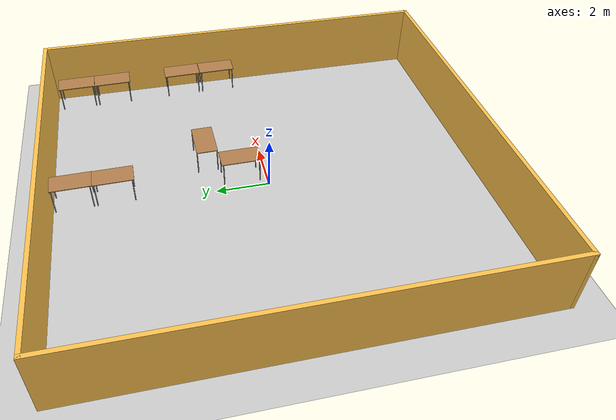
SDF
<sdf version="1.7">
 <world name="default">
  <model name="ground_plane">
   <static>1</static>
   <link name="link">
    <collision name="collision">
     <geometry><plane><normal>0 0 1</normal><size>100 100</size></plane></geometry>
     <surface>
      <contact><collide_bitmask>65535</collide_bitmask></contact>
      <friction><ode><mu>100</mu><mu2>50</mu2></ode></friction>
     </surface>
    </collision>
    <visual name="visual">
     <cast_shadows>0</cast_shadows>
     <geometry><plane><normal>0 0 1</normal><size>100 100</size></plane></geometry>
     <material>
      <script><uri>file://media/materials/scripts/gazebo.material</uri><name>Gazebo/Grey</name></script>
     </material>
    </visual>
   </link>
  </model>
  <model name="RRC">
   <link name="Wall_0">
    <collision name="Wall_0_Collision">
     <geometry><box><size>16.15 0.15 2.5</size></box></geometry>
     <pose>0 0 1.25 0 -0 0</pose>
    </collision>
    <visual name="Wall_0_Visual">
     <pose>0 0 1.25 0 -0 0</pose>
     <geometry><box><size>16.15 0.15 2.5</size></box></geometry>
     <material>
      <script><uri>file://media/materials/scripts/gazebo.material</uri><name>Gazebo/Grey</name></script>
      <ambient>1 0.764706 0.305882 1</ambient>
     </material>
     <meta><layer>0</layer></meta>
    </visual>
    <pose>-7.5 0 0 0 -0 1.5708</pose>
   </link>
   <link name="Wall_1">
    <collision name="Wall_1_Collision">
     <geometry><box><size>15.15 0.15 2.5</size></box></geometry>
     <pose>0 0 1.25 0 -0 0</pose>
    </collision>
    <visual name="Wall_1_Visual">
     <pose>0 0 1.25 0 -0 0</pose>
     <geometry><box><size>15.15 0.15 2.5</size></box></geometry>
     <material>
      <script><uri>file://media/materials/scripts/gazebo.material</uri><name>Gazebo/Grey</name></script>
      <ambient>1 0.764706 0.305882 1</ambient>
     </material>
     <meta><layer>0</layer></meta>
    </visual>
    <pose>0 8 0 0 -0 0</pose>
   </link>
   <link name="Wall_2">
    <collision name="Wall_2_Collision">
     <geometry><box><size>16.15 0.15 2.5</size></box></geometry>
     <pose>0 0 1.25 0 -0 0</pose>
    </collision>
    <visual name="Wall_2_Visual">
     <pose>0 0 1.25 0 -0 0</pose>
     <geometry><box><size>16.15 0.15 2.5</size></box></geometry>
     <material>
      <script><uri>file://media/materials/scripts/gazebo.material</uri><name>Gazebo/Grey</name></script>
      <ambient>1 0.764706 0.305882 1</ambient>
     </material>
     <meta><layer>0</layer></meta>
    </visual>
    <pose>7.5 0 0 0 -0 -1.5708</pose>
   </link>
   <link name="Wall_3">
    <collision name="Wall_3_Collision">
     <geometry><box><size>15.15 0.15 2.5</size></box></geometry>
     <pose>0 0 1.25 0 -0 0</pose>
    </collision>
    <visual name="Wall_3_Visual">
     <pose>0 0 1.25 0 -0 0</pose>
     <geometry><box><size>15.15 0.15 2.5</size></box></geometry>
     <material>
      <script><uri>file://media/materials/scripts/gazebo.material</uri><name>Gazebo/Grey</name></script>
      <ambient>1 0.764706 0.305882 1</ambient>
     </material>
     <meta><layer>0</layer></meta>
    </visual>
    <pose>0 -8 0 0 -0 3.14159</pose>
   </link>
   <link name="Wall_4">
    <collision name="Wall_4_Collision">
     <geometry><box><size>0.15 0.15 2.5</size></box></geometry>
     <pose>0 0 1.25 0 -0 0</pose>
    </collision>
    <visual name="Wall_4_Visual">
     <pose>0 0 1.25 0 -0 0</pose>
     <geometry><box><size>0.15 0.15 2.5</size></box></geometry>
     <material>
      <script><uri>file://media/materials/scripts/gazebo.material</uri><name>Gazebo/Grey</name></script>
      <ambient>1 1 1 1</ambient>
     </material>
     <meta><layer>0</layer></meta>
    </visual>
    <pose>-7.5 -8 0 0 -0 0</pose>
   </link>
   <static>1</static>
  </model>
  <model name="table_clone_0_clone_clone_clone">
   <static>1</static>
   <link name="link">
    <collision name="surface">
     <pose>0 0 1 0 -0 0</pose>
     <geometry><box><size>1.5 0.8 0.03</size></box></geometry>
     <surface><friction><ode><mu>0.6</mu><mu2>0.6</mu2></ode></friction></surface>
    </collision>
    <visual name="visual1">
     <pose>0 0 1 0 -0 0</pose>
     <geometry><box><size>1.5 0.8 0.03</size></box></geometry>
     <material>
      <script><uri>file://media/materials/scripts/gazebo.material</uri><name>Gazebo/Wood</name></script>
     </material>
    </visual>
    <collision name="front_left_leg">
     <pose>0.68 0.38 0.5 0 -0 0</pose>
     <geometry><cylinder><radius>0.02</radius><length>1</length></cylinder></geometry>
    </collision>
    <visual name="front_left_leg">
     <pose>0.68 0.38 0.5 0 -0 0</pose>
     <geometry><cylinder><radius>0.02</radius><length>1</length></cylinder></geometry>
     <material>
      <script><uri>file://media/materials/scripts/gazebo.material</uri><name>Gazebo/Grey</name></script>
     </material>
    </visual>
    <collision name="front_right_leg">
     <pose>0.68 -0.38 0.5 0 -0 0</pose>
     <geometry><cylinder><radius>0.02</radius><length>1</length></cylinder></geometry>
    </collision>
    <visual name="front_right_leg">
     <pose>0.68 -0.38 0.5 0 -0 0</pose>
     <geometry><cylinder><radius>0.02</radius><length>1</length></cylinder></geometry>
     <material>
      <script><uri>file://media/materials/scripts/gazebo.material</uri><name>Gazebo/Grey</name></script>
     </material>
    </visual>
    <collision name="back_right_leg">
     <pose>-0.68 -0.38 0.5 0 -0 0</pose>
     <geometry><cylinder><radius>0.02</radius><length>1</length></cylinder></geometry>
    </collision>
    <visual name="back_right_leg">
     <pose>-0.68 -0.38 0.5 0 -0 0</pose>
     <geometry><cylinder><radius>0.02</radius><length>1</length></cylinder></geometry>
     <material>
      <script><uri>file://media/materials/scripts/gazebo.material</uri><name>Gazebo/Grey</name></script>
     </material>
    </visual>
    <collision name="back_left_leg">
     <pose>-0.68 0.38 0.5 0 -0 0</pose>
     <geometry><cylinder><radius>0.02</radius><length>1</length></cylinder></geometry>
    </collision>
    <visual name="back_left_leg">
     <pose>-0.68 0.38 0.5 0 -0 0</pose>
     <geometry><cylinder><radius>0.02</radius><length>1</length></cylinder></geometry>
     <material>
      <script><uri>file://media/materials/scripts/gazebo.material</uri><name>Gazebo/Grey</name></script>
     </material>
    </visual>
   </link>
   <pose>0.539492 7.15927 0 0 -0 1.58908</pose>
  </model>
  <model name="table_clone_0_clone_clone_clone_0">
   <static>1</static>
   <link name="link">
    <collision name="surface">
     <pose>0 0 1 0 -0 0</pose>
     <geometry><box><size>1.5 0.8 0.03</size></box></geometry>
     <surface><friction><ode><mu>0.6</mu><mu2>0.6</mu2></ode></friction></surface>
    </collision>
    <visual name="visual1">
     <pose>0 0 1 0 -0 0</pose>
     <geometry><box><size>1.5 0.8 0.03</size></box></geometry>
     <material>
      <script><uri>file://media/materials/scripts/gazebo.material</uri><name>Gazebo/Wood</name></script>
     </material>
    </visual>
    <collision name="front_left_leg">
     <pose>0.68 0.38 0.5 0 -0 0</pose>
     <geometry><cylinder><radius>0.02</radius><length>1</length></cylinder></geometry>
    </collision>
    <visual name="front_left_leg">
     <pose>0.68 0.38 0.5 0 -0 0</pose>
     <geometry><cylinder><radius>0.02</radius><length>1</length></cylinder></geometry>
     <material>
      <script><uri>file://media/materials/scripts/gazebo.material</uri><name>Gazebo/Grey</name></script>
     </material>
    </visual>
    <collision name="front_right_leg">
     <pose>0.68 -0.38 0.5 0 -0 0</pose>
     <geometry><cylinder><radius>0.02</radius><length>1</length></cylinder></geometry>
    </collision>
    <visual name="front_right_leg">
     <pose>0.68 -0.38 0.5 0 -0 0</pose>
     <geometry><cylinder><radius>0.02</radius><length>1</length></cylinder></geometry>
     <material>
      <script><uri>file://media/materials/scripts/gazebo.material</uri><name>Gazebo/Grey</name></script>
     </material>
    </visual>
    <collision name="back_right_leg">
     <pose>-0.68 -0.38 0.5 0 -0 0</pose>
     <geometry><cylinder><radius>0.02</radius><length>1</length></cylinder></geometry>
    </collision>
    <visual name="back_right_leg">
     <pose>-0.68 -0.38 0.5 0 -0 0</pose>
     <geometry><cylinder><radius>0.02</radius><length>1</length></cylinder></geometry>
     <material>
      <script><uri>file://media/materials/scripts/gazebo.material</uri><name>Gazebo/Grey</name></script>
     </material>
    </visual>
    <collision name="back_left_leg">
     <pose>-0.68 0.38 0.5 0 -0 0</pose>
     <geometry><cylinder><radius>0.02</radius><length>1</length></cylinder></geometry>
    </collision>
    <visual name="back_left_leg">
     <pose>-0.68 0.38 0.5 0 -0 0</pose>
     <geometry><cylinder><radius>0.02</radius><length>1</length></cylinder></geometry>
     <material>
      <script><uri>file://media/materials/scripts/gazebo.material</uri><name>Gazebo/Grey</name></script>
     </material>
    </visual>
   </link>
   <pose>0.553868 5.6672 0 0 -0 1.58908</pose>
  </model>
  <model name="table_clone_0_clone_1">
   <static>1</static>
   <link name="link">
    <collision name="surface">
     <pose>0 0 1 0 -0 0</pose>
     <geometry><box><size>1.5 0.8 0.03</size></box></geometry>
     <surface><friction><ode><mu>0.6</mu><mu2>0.6</mu2></ode></friction></surface>
    </collision>
    <visual name="visual1">
     <pose>0 0 1 0 -0 0</pose>
     <geometry><box><size>1.5 0.8 0.03</size></box></geometry>
     <material>
      <script><uri>file://media/materials/scripts/gazebo.material</uri><name>Gazebo/Wood</name></script>
     </material>
    </visual>
    <collision name="front_left_leg">
     <pose>0.68 0.38 0.5 0 -0 0</pose>
     <geometry><cylinder><radius>0.02</radius><length>1</length></cylinder></geometry>
    </collision>
    <visual name="front_left_leg">
     <pose>0.68 0.38 0.5 0 -0 0</pose>
     <geometry><cylinder><radius>0.02</radius><length>1</length></cylinder></geometry>
     <material>
      <script><uri>file://media/materials/scripts/gazebo.material</uri><name>Gazebo/Grey</name></script>
     </material>
    </visual>
    <collision name="front_right_leg">
     <pose>0.68 -0.38 0.5 0 -0 0</pose>
     <geometry><cylinder><radius>0.02</radius><length>1</length></cylinder></geometry>
    </collision>
    <visual name="front_right_leg">
     <pose>0.68 -0.38 0.5 0 -0 0</pose>
     <geometry><cylinder><radius>0.02</radius><length>1</length></cylinder></geometry>
     <material>
      <script><uri>file://media/materials/scripts/gazebo.material</uri><name>Gazebo/Grey</name></script>
     </material>
    </visual>
    <collision name="back_right_leg">
     <pose>-0.68 -0.38 0.5 0 -0 0</pose>
     <geometry><cylinder><radius>0.02</radius><length>1</length></cylinder></geometry>
    </collision>
    <visual name="back_right_leg">
     <pose>-0.68 -0.38 0.5 0 -0 0</pose>
     <geometry><cylinder><radius>0.02</radius><length>1</length></cylinder></geometry>
     <material>
      <script><uri>file://media/materials/scripts/gazebo.material</uri><name>Gazebo/Grey</name></script>
     </material>
    </visual>
    <collision name="back_left_leg">
     <pose>-0.68 0.38 0.5 0 -0 0</pose>
     <geometry><cylinder><radius>0.02</radius><length>1</length></cylinder></geometry>
    </collision>
    <visual name="back_left_leg">
     <pose>-0.68 0.38 0.5 0 -0 0</pose>
     <geometry><cylinder><radius>0.02</radius><length>1</length></cylinder></geometry>
     <material>
      <script><uri>file://media/materials/scripts/gazebo.material</uri><name>Gazebo/Grey</name></script>
     </material>
    </visual>
   </link>
   <pose>6.94327 6.99918 0 0 -0 1.58908</pose>
  </model>
  <model name="table_clone_0_clone_2">
   <static>1</static>
   <link name="link">
    <collision name="surface">
     <pose>0 0 1 0 -0 0</pose>
     <geometry><box><size>1.5 0.8 0.03</size></box></geometry>
     <surface><friction><ode><mu>0.6</mu><mu2>0.6</mu2></ode></friction></surface>
    </collision>
    <visual name="visual1">
     <pose>0 0 1 0 -0 0</pose>
     <geometry><box><size>1.5 0.8 0.03</size></box></geometry>
     <material>
      <script><uri>file://media/materials/scripts/gazebo.material</uri><name>Gazebo/Wood</name></script>
     </material>
    </visual>
    <collision name="front_left_leg">
     <pose>0.68 0.38 0.5 0 -0 0</pose>
     <geometry><cylinder><radius>0.02</radius><length>1</length></cylinder></geometry>
    </collision>
    <visual name="front_left_leg">
     <pose>0.68 0.38 0.5 0 -0 0</pose>
     <geometry><cylinder><radius>0.02</radius><length>1</length></cylinder></geometry>
     <material>
      <script><uri>file://media/materials/scripts/gazebo.material</uri><name>Gazebo/Grey</name></script>
     </material>
    </visual>
    <collision name="front_right_leg">
     <pose>0.68 -0.38 0.5 0 -0 0</pose>
     <geometry><cylinder><radius>0.02</radius><length>1</length></cylinder></geometry>
    </collision>
    <visual name="front_right_leg">
     <pose>0.68 -0.38 0.5 0 -0 0</pose>
     <geometry><cylinder><radius>0.02</radius><length>1</length></cylinder></geometry>
     <material>
      <script><uri>file://media/materials/scripts/gazebo.material</uri><name>Gazebo/Grey</name></script>
     </material>
    </visual>
    <collision name="back_right_leg">
     <pose>-0.68 -0.38 0.5 0 -0 0</pose>
     <geometry><cylinder><radius>0.02</radius><length>1</length></cylinder></geometry>
    </collision>
    <visual name="back_right_leg">
     <pose>-0.68 -0.38 0.5 0 -0 0</pose>
     <geometry><cylinder><radius>0.02</radius><length>1</length></cylinder></geometry>
     <material>
      <script><uri>file://media/materials/scripts/gazebo.material</uri><name>Gazebo/Grey</name></script>
     </material>
    </visual>
    <collision name="back_left_leg">
     <pose>-0.68 0.38 0.5 0 -0 0</pose>
     <geometry><cylinder><radius>0.02</radius><length>1</length></cylinder></geometry>
    </collision>
    <visual name="back_left_leg">
     <pose>-0.68 0.38 0.5 0 -0 0</pose>
     <geometry><cylinder><radius>0.02</radius><length>1</length></cylinder></geometry>
     <material>
      <script><uri>file://media/materials/scripts/gazebo.material</uri><name>Gazebo/Grey</name></script>
     </material>
    </visual>
   </link>
   <pose>6.95814 5.4935 0 0 -0 1.58908</pose>
  </model>
  <model name="table_clone_0_clone_4">
   <static>1</static>
   <link name="link">
    <collision name="surface">
     <pose>0 0 1 0 -0 0</pose>
     <geometry><box><size>1.5 0.8 0.03</size></box></geometry>
     <surface><friction><ode><mu>0.6</mu><mu2>0.6</mu2></ode></friction></surface>
    </collision>
    <visual name="visual1">
     <pose>0 0 1 0 -0 0</pose>
     <geometry><box><size>1.5 0.8 0.03</size></box></geometry>
     <material>
      <script><uri>file://media/materials/scripts/gazebo.material</uri><name>Gazebo/Wood</name></script>
     </material>
    </visual>
    <collision name="front_left_leg">
     <pose>0.68 0.38 0.5 0 -0 0</pose>
     <geometry><cylinder><radius>0.02</radius><length>1</length></cylinder></geometry>
    </collision>
    <visual name="front_left_leg">
     <pose>0.68 0.38 0.5 0 -0 0</pose>
     <geometry><cylinder><radius>0.02</radius><length>1</length></cylinder></geometry>
     <material>
      <script><uri>file://media/materials/scripts/gazebo.material</uri><name>Gazebo/Grey</name></script>
     </material>
    </visual>
    <collision name="front_right_leg">
     <pose>0.68 -0.38 0.5 0 -0 0</pose>
     <geometry><cylinder><radius>0.02</radius><length>1</length></cylinder></geometry>
    </collision>
    <visual name="front_right_leg">
     <pose>0.68 -0.38 0.5 0 -0 0</pose>
     <geometry><cylinder><radius>0.02</radius><length>1</length></cylinder></geometry>
     <material>
      <script><uri>file://media/materials/scripts/gazebo.material</uri><name>Gazebo/Grey</name></script>
     </material>
    </visual>
    <collision name="back_right_leg">
     <pose>-0.68 -0.38 0.5 0 -0 0</pose>
     <geometry><cylinder><radius>0.02</radius><length>1</length></cylinder></geometry>
    </collision>
    <visual name="back_right_leg">
     <pose>-0.68 -0.38 0.5 0 -0 0</pose>
     <geometry><cylinder><radius>0.02</radius><length>1</length></cylinder></geometry>
     <material>
      <script><uri>file://media/materials/scripts/gazebo.material</uri><name>Gazebo/Grey</name></script>
     </material>
    </visual>
    <collision name="back_left_leg">
     <pose>-0.68 0.38 0.5 0 -0 0</pose>
     <geometry><cylinder><radius>0.02</radius><length>1</length></cylinder></geometry>
    </collision>
    <visual name="back_left_leg">
     <pose>-0.68 0.38 0.5 0 -0 0</pose>
     <geometry><cylinder><radius>0.02</radius><length>1</length></cylinder></geometry>
     <material>
      <script><uri>file://media/materials/scripts/gazebo.material</uri><name>Gazebo/Grey</name></script>
     </material>
    </visual>
   </link>
   <pose>7.01065 2.4699 0 0 -0 1.58908</pose>
  </model>
  <model name="table_clone_0_clone_5">
   <static>1</static>
   <link name="link">
    <collision name="surface">
     <pose>0 0 1 0 -0 0</pose>
     <geometry><box><size>1.5 0.8 0.03</size></box></geometry>
     <surface><friction><ode><mu>0.6</mu><mu2>0.6</mu2></ode></friction></surface>
    </collision>
    <visual name="visual1">
     <pose>0 0 1 0 -0 0</pose>
     <geometry><box><size>1.5 0.8 0.03</size></box></geometry>
     <material>
      <script><uri>file://media/materials/scripts/gazebo.material</uri><name>Gazebo/Wood</name></script>
     </material>
    </visual>
    <collision name="front_left_leg">
     <pose>0.68 0.38 0.5 0 -0 0</pose>
     <geometry><cylinder><radius>0.02</radius><length>1</length></cylinder></geometry>
    </collision>
    <visual name="front_left_leg">
     <pose>0.68 0.38 0.5 0 -0 0</pose>
     <geometry><cylinder><radius>0.02</radius><length>1</length></cylinder></geometry>
     <material>
      <script><uri>file://media/materials/scripts/gazebo.material</uri><name>Gazebo/Grey</name></script>
     </material>
    </visual>
    <collision name="front_right_leg">
     <pose>0.68 -0.38 0.5 0 -0 0</pose>
     <geometry><cylinder><radius>0.02</radius><length>1</length></cylinder></geometry>
    </collision>
    <visual name="front_right_leg">
     <pose>0.68 -0.38 0.5 0 -0 0</pose>
     <geometry><cylinder><radius>0.02</radius><length>1</length></cylinder></geometry>
     <material>
      <script><uri>file://media/materials/scripts/gazebo.material</uri><name>Gazebo/Grey</name></script>
     </material>
    </visual>
    <collision name="back_right_leg">
     <pose>-0.68 -0.38 0.5 0 -0 0</pose>
     <geometry><cylinder><radius>0.02</radius><length>1</length></cylinder></geometry>
    </collision>
    <visual name="back_right_leg">
     <pose>-0.68 -0.38 0.5 0 -0 0</pose>
     <geometry><cylinder><radius>0.02</radius><length>1</length></cylinder></geometry>
     <material>
      <script><uri>file://media/materials/scripts/gazebo.material</uri><name>Gazebo/Grey</name></script>
     </material>
    </visual>
    <collision name="back_left_leg">
     <pose>-0.68 0.38 0.5 0 -0 0</pose>
     <geometry><cylinder><radius>0.02</radius><length>1</length></cylinder></geometry>
    </collision>
    <visual name="back_left_leg">
     <pose>-0.68 0.38 0.5 0 -0 0</pose>
     <geometry><cylinder><radius>0.02</radius><length>1</length></cylinder></geometry>
     <material>
      <script><uri>file://media/materials/scripts/gazebo.material</uri><name>Gazebo/Grey</name></script>
     </material>
    </visual>
   </link>
   <pose>7.03829 0.952201 0 0 -0 1.58908</pose>
  </model>
  <model name="table_clone_2_clone_clone">
   <static>1</static>
   <link name="link">
    <collision name="surface">
     <pose>0 0 1 0 -0 0</pose>
     <geometry><box><size>1.5 0.8 0.03</size></box></geometry>
     <surface><friction><ode><mu>0.6</mu><mu2>0.6</mu2></ode></friction></surface>
    </collision>
    <visual name="visual1">
     <pose>0 0 1 0 -0 0</pose>
     <geometry><box><size>1.5 0.8 0.03</size></box></geometry>
     <material>
      <script><uri>file://media/materials/scripts/gazebo.material</uri><name>Gazebo/Wood</name></script>
     </material>
    </visual>
    <collision name="front_left_leg">
     <pose>0.68 0.38 0.5 0 -0 0</pose>
     <geometry><cylinder><radius>0.02</radius><length>1</length></cylinder></geometry>
    </collision>
    <visual name="front_left_leg">
     <pose>0.68 0.38 0.5 0 -0 0</pose>
     <geometry><cylinder><radius>0.02</radius><length>1</length></cylinder></geometry>
     <material>
      <script><uri>file://media/materials/scripts/gazebo.material</uri><name>Gazebo/Grey</name></script>
     </material>
    </visual>
    <collision name="front_right_leg">
     <pose>0.68 -0.38 0.5 0 -0 0</pose>
     <geometry><cylinder><radius>0.02</radius><length>1</length></cylinder></geometry>
    </collision>
    <visual name="front_right_leg">
     <pose>0.68 -0.38 0.5 0 -0 0</pose>
     <geometry><cylinder><radius>0.02</radius><length>1</length></cylinder></geometry>
     <material>
      <script><uri>file://media/materials/scripts/gazebo.material</uri><name>Gazebo/Grey</name></script>
     </material>
    </visual>
    <collision name="back_right_leg">
     <pose>-0.68 -0.38 0.5 0 -0 0</pose>
     <geometry><cylinder><radius>0.02</radius><length>1</length></cylinder></geometry>
    </collision>
    <visual name="back_right_leg">
     <pose>-0.68 -0.38 0.5 0 -0 0</pose>
     <geometry><cylinder><radius>0.02</radius><length>1</length></cylinder></geometry>
     <material>
      <script><uri>file://media/materials/scripts/gazebo.material</uri><name>Gazebo/Grey</name></script>
     </material>
    </visual>
    <collision name="back_left_leg">
     <pose>-0.68 0.38 0.5 0 -0 0</pose>
     <geometry><cylinder><radius>0.02</radius><length>1</length></cylinder></geometry>
    </collision>
    <visual name="back_left_leg">
     <pose>-0.68 0.38 0.5 0 -0 0</pose>
     <geometry><cylinder><radius>0.02</radius><length>1</length></cylinder></geometry>
     <material>
      <script><uri>file://media/materials/scripts/gazebo.material</uri><name>Gazebo/Grey</name></script>
     </material>
    </visual>
   </link>
   <pose>1.90306 2.1532 0 0 -0 0.020412</pose>
  </model>
  <model name="table_clone_2_clone_clone_clone">
   <static>1</static>
   <link name="link">
    <collision name="surface">
     <pose>0 0 1 0 -0 0</pose>
     <geometry><box><size>1.5 0.8 0.03</size></box></geometry>
     <surface><friction><ode><mu>0.6</mu><mu2>0.6</mu2></ode></friction></surface>
    </collision>
    <visual name="visual1">
     <pose>0 0 1 0 -0 0</pose>
     <geometry><box><size>1.5 0.8 0.03</size></box></geometry>
     <material>
      <script><uri>file://media/materials/scripts/gazebo.material</uri><name>Gazebo/Wood</name></script>
     </material>
    </visual>
    <collision name="front_left_leg">
     <pose>0.68 0.38 0.5 0 -0 0</pose>
     <geometry><cylinder><radius>0.02</radius><length>1</length></cylinder></geometry>
    </collision>
    <visual name="front_left_leg">
     <pose>0.68 0.38 0.5 0 -0 0</pose>
     <geometry><cylinder><radius>0.02</radius><length>1</length></cylinder></geometry>
     <material>
      <script><uri>file://media/materials/scripts/gazebo.material</uri><name>Gazebo/Grey</name></script>
     </material>
    </visual>
    <collision name="front_right_leg">
     <pose>0.68 -0.38 0.5 0 -0 0</pose>
     <geometry><cylinder><radius>0.02</radius><length>1</length></cylinder></geometry>
    </collision>
    <visual name="front_right_leg">
     <pose>0.68 -0.38 0.5 0 -0 0</pose>
     <geometry><cylinder><radius>0.02</radius><length>1</length></cylinder></geometry>
     <material>
      <script><uri>file://media/materials/scripts/gazebo.material</uri><name>Gazebo/Grey</name></script>
     </material>
    </visual>
    <collision name="back_right_leg">
     <pose>-0.68 -0.38 0.5 0 -0 0</pose>
     <geometry><cylinder><radius>0.02</radius><length>1</length></cylinder></geometry>
    </collision>
    <visual name="back_right_leg">
     <pose>-0.68 -0.38 0.5 0 -0 0</pose>
     <geometry><cylinder><radius>0.02</radius><length>1</length></cylinder></geometry>
     <material>
      <script><uri>file://media/materials/scripts/gazebo.material</uri><name>Gazebo/Grey</name></script>
     </material>
    </visual>
    <collision name="back_left_leg">
     <pose>-0.68 0.38 0.5 0 -0 0</pose>
     <geometry><cylinder><radius>0.02</radius><length>1</length></cylinder></geometry>
    </collision>
    <visual name="back_left_leg">
     <pose>-0.68 0.38 0.5 0 -0 0</pose>
     <geometry><cylinder><radius>0.02</radius><length>1</length></cylinder></geometry>
     <material>
      <script><uri>file://media/materials/scripts/gazebo.material</uri><name>Gazebo/Grey</name></script>
     </material>
    </visual>
   </link>
   <pose>0.664986 0.980658 0 0 0 -1.55798</pose>
  </model>
 </world>
</sdf>
